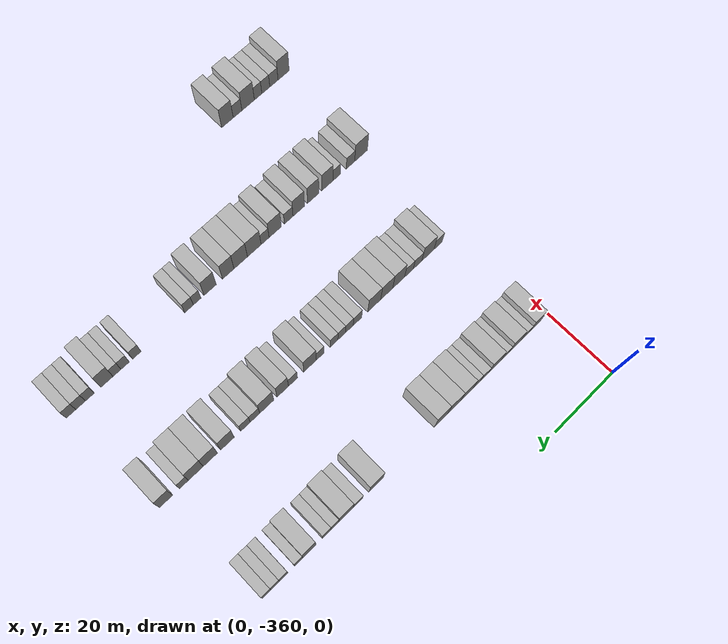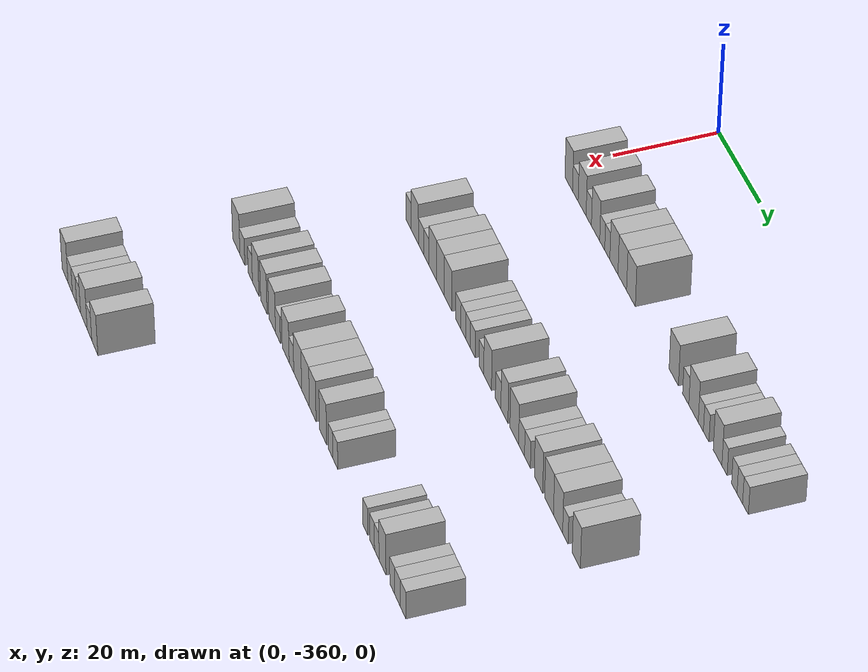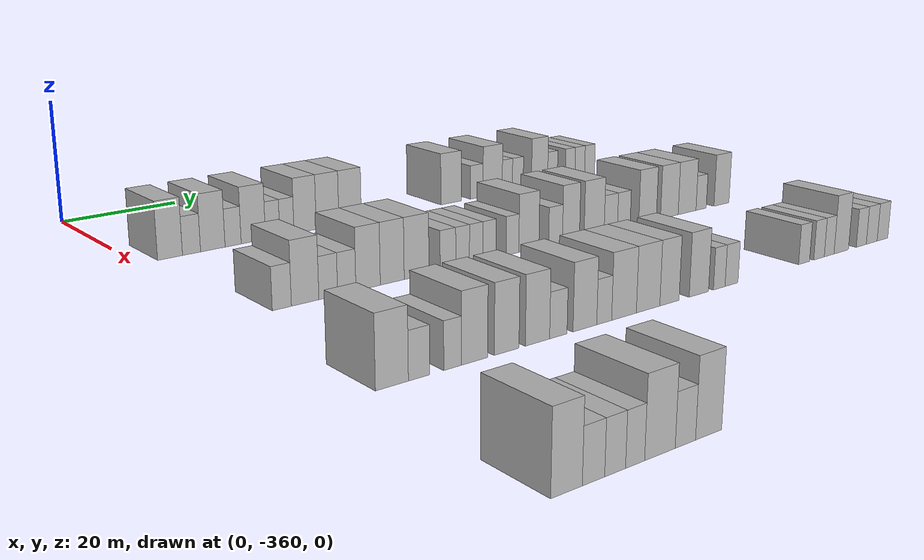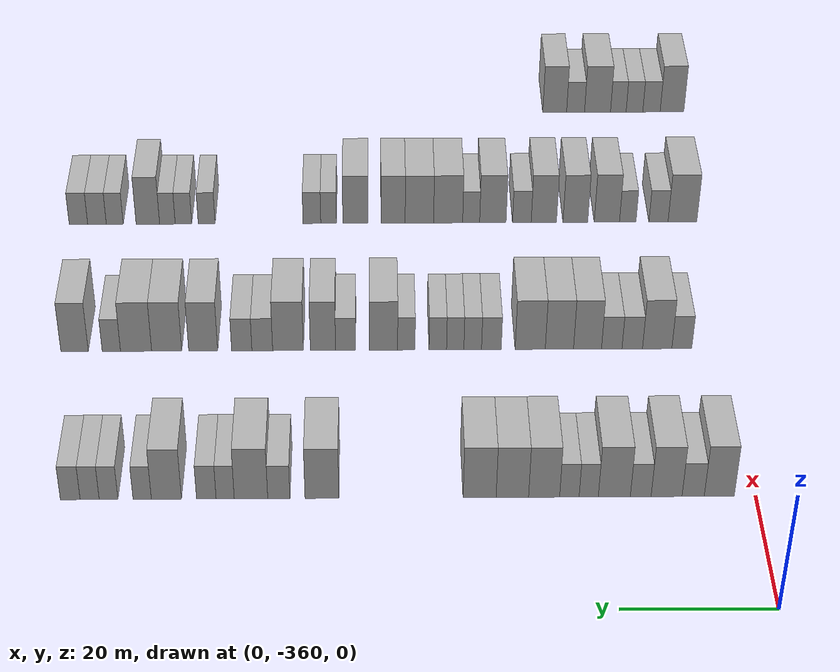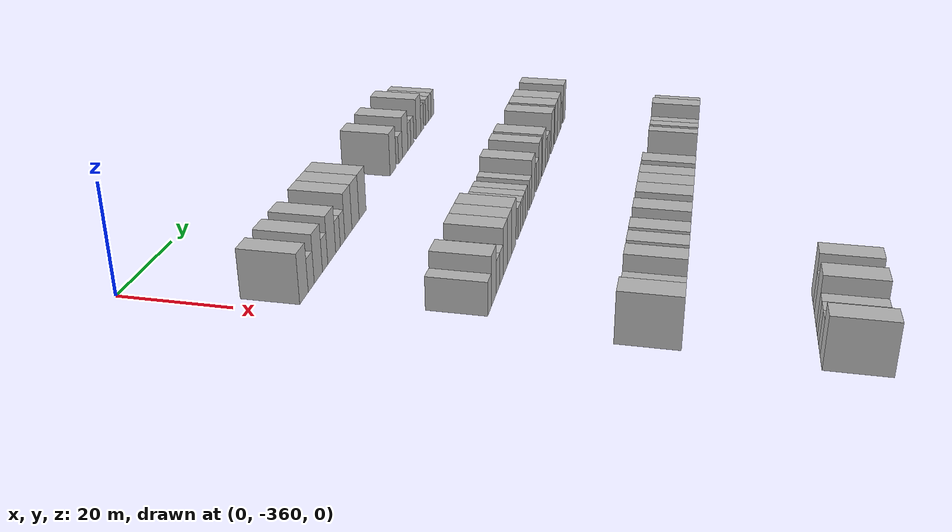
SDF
<sdf version="1.6">
 <world name="default">
  <model name="building_27">
   <static>1</static>
   <pose>25.0000 -355.0844 0 0.000000 0.000000 0.000000</pose>
   <link name="link">
    <pose>0 0 4.50 0 0 0</pose>
    <collision name="collision"><geometry><box><size>10.0000 3.9851 9.0000</size></box></geometry></collision>
    <visual name="visual">
     <cast_shadows>0</cast_shadows>
     <geometry><box><size>10.0000 3.9851 9.0000</size></box></geometry>
     <material>
      <script>
       <uri>model://HANNAS_wall/materials/scripts</uri>
       <uri>model://HANNAS_wall/materials/textures</uri>
       <name>vrc/HANNAS_wall</name>
      </script>
     </material>
    </visual>
   </link>
  </model>
  <model name="building_28">
   <static>1</static>
   <pose>25.0000 -351.6137 0 0.000000 0.000000 0.000000</pose>
   <link name="link">
    <pose>0 0 3.00 0 0 0</pose>
    <collision name="collision"><geometry><box><size>10.0000 2.9562 6.0000</size></box></geometry></collision>
    <visual name="visual">
     <cast_shadows>0</cast_shadows>
     <geometry><box><size>10.0000 2.9562 6.0000</size></box></geometry>
     <material>
      <script>
       <uri>model://HANNAS_wall/materials/scripts</uri>
       <uri>model://HANNAS_wall/materials/textures</uri>
       <name>vrc/HANNAS_wall</name>
      </script>
     </material>
    </visual>
   </link>
  </model>
  <model name="building_29">
   <static>1</static>
   <pose>25.0000 -348.0828 0 0.000000 0.000000 0.000000</pose>
   <link name="link">
    <pose>0 0 4.50 0 0 0</pose>
    <collision name="collision"><geometry><box><size>10.0000 4.1057 9.0000</size></box></geometry></collision>
    <visual name="visual">
     <cast_shadows>0</cast_shadows>
     <geometry><box><size>10.0000 4.1057 9.0000</size></box></geometry>
     <material>
      <script>
       <uri>model://HANNAS_wall/materials/scripts</uri>
       <uri>model://HANNAS_wall/materials/textures</uri>
       <name>vrc/HANNAS_wall</name>
      </script>
     </material>
    </visual>
   </link>
  </model>
  <model name="building_30">
   <static>1</static>
   <pose>25.0000 -344.6505 0 0.000000 0.000000 0.000000</pose>
   <link name="link">
    <pose>0 0 3.00 0 0 0</pose>
    <collision name="collision"><geometry><box><size>10.0000 2.7588 6.0000</size></box></geometry></collision>
    <visual name="visual">
     <cast_shadows>0</cast_shadows>
     <geometry><box><size>10.0000 2.7588 6.0000</size></box></geometry>
     <material>
      <script>
       <uri>model://HANNAS_wall/materials/scripts</uri>
       <uri>model://HANNAS_wall/materials/textures</uri>
       <name>vrc/HANNAS_wall</name>
      </script>
     </material>
    </visual>
   </link>
  </model>
  <model name="building_31">
   <static>1</static>
   <pose>25.0000 -341.1435 0 0.000000 0.000000 0.000000</pose>
   <link name="link">
    <pose>0 0 4.50 0 0 0</pose>
    <collision name="collision"><geometry><box><size>10.0000 4.2553 9.0000</size></box></geometry></collision>
    <visual name="visual">
     <cast_shadows>0</cast_shadows>
     <geometry><box><size>10.0000 4.2553 9.0000</size></box></geometry>
     <material>
      <script>
       <uri>model://HANNAS_wall/materials/scripts</uri>
       <uri>model://HANNAS_wall/materials/textures</uri>
       <name>vrc/HANNAS_wall</name>
      </script>
     </material>
    </visual>
   </link>
  </model>
  <model name="building_32">
   <static>1</static>
   <pose>25.0000 -337.7430 0 0.000000 0.000000 0.000000</pose>
   <link name="link">
    <pose>0 0 3.00 0 0 0</pose>
    <collision name="collision"><geometry><box><size>10.0000 2.5455 6.0000</size></box></geometry></collision>
    <visual name="visual">
     <cast_shadows>0</cast_shadows>
     <geometry><box><size>10.0000 2.5455 6.0000</size></box></geometry>
     <material>
      <script>
       <uri>model://HANNAS_wall/materials/scripts</uri>
       <uri>model://HANNAS_wall/materials/textures</uri>
       <name>vrc/HANNAS_wall</name>
      </script>
     </material>
    </visual>
   </link>
  </model>
  <model name="building_33">
   <static>1</static>
   <pose>25.0000 -335.1756 0 0.000000 0.000000 0.000000</pose>
   <link name="link">
    <pose>0 0 3.00 0 0 0</pose>
    <collision name="collision"><geometry><box><size>10.0000 2.5894 6.0000</size></box></geometry></collision>
    <visual name="visual">
     <cast_shadows>0</cast_shadows>
     <geometry><box><size>10.0000 2.5894 6.0000</size></box></geometry>
     <material>
      <script>
       <uri>model://HANNAS_wall/materials/scripts</uri>
       <uri>model://HANNAS_wall/materials/textures</uri>
       <name>vrc/HANNAS_wall</name>
      </script>
     </material>
    </visual>
   </link>
  </model>
  <model name="building_34">
   <static>1</static>
   <pose>25.0000 -331.8204 0 0.000000 0.000000 0.000000</pose>
   <link name="link">
    <pose>0 0 4.50 0 0 0</pose>
    <collision name="collision"><geometry><box><size>10.0000 4.1209 9.0000</size></box></geometry></collision>
    <visual name="visual">
     <cast_shadows>0</cast_shadows>
     <geometry><box><size>10.0000 4.1209 9.0000</size></box></geometry>
     <material>
      <script>
       <uri>model://HANNAS_wall/materials/scripts</uri>
       <uri>model://HANNAS_wall/materials/textures</uri>
       <name>vrc/HANNAS_wall</name>
      </script>
     </material>
    </visual>
   </link>
  </model>
  <model name="building_35">
   <static>1</static>
   <pose>25.0000 -327.6052 0 0.000000 0.000000 0.000000</pose>
   <link name="link">
    <pose>0 0 4.50 0 0 0</pose>
    <collision name="collision"><geometry><box><size>10.0000 4.3096 9.0000</size></box></geometry></collision>
    <visual name="visual">
     <cast_shadows>0</cast_shadows>
     <geometry><box><size>10.0000 4.3096 9.0000</size></box></geometry>
     <material>
      <script>
       <uri>model://HANNAS_wall/materials/scripts</uri>
       <uri>model://HANNAS_wall/materials/textures</uri>
       <name>vrc/HANNAS_wall</name>
      </script>
     </material>
    </visual>
   </link>
  </model>
  <model name="building_36">
   <static>1</static>
   <pose>25.0000 -323.2583 0 0.000000 0.000000 0.000000</pose>
   <link name="link">
    <pose>0 0 4.50 0 0 0</pose>
    <collision name="collision"><geometry><box><size>10.0000 4.3843 9.0000</size></box></geometry></collision>
    <visual name="visual">
     <cast_shadows>0</cast_shadows>
     <geometry><box><size>10.0000 4.3843 9.0000</size></box></geometry>
     <material>
      <script>
       <uri>model://HANNAS_wall/materials/scripts</uri>
       <uri>model://HANNAS_wall/materials/textures</uri>
       <name>vrc/HANNAS_wall</name>
      </script>
     </material>
    </visual>
   </link>
  </model>
  <model name="building_37">
   <static>1</static>
   <pose>25.0000 -302.3464 0 0.000000 0.000000 0.000000</pose>
   <link name="link">
    <pose>0 0 4.50 0 0 0</pose>
    <collision name="collision"><geometry><box><size>10.0000 4.4798 9.0000</size></box></geometry></collision>
    <visual name="visual">
     <cast_shadows>0</cast_shadows>
     <geometry><box><size>10.0000 4.4798 9.0000</size></box></geometry>
     <material>
      <script>
       <uri>model://HANNAS_wall/materials/scripts</uri>
       <uri>model://HANNAS_wall/materials/textures</uri>
       <name>vrc/HANNAS_wall</name>
      </script>
     </material>
    </visual>
   </link>
  </model>
  <model name="building_38">
   <static>1</static>
   <pose>25.0000 -296.6326 0 0.000000 0.000000 0.000000</pose>
   <link name="link">
    <pose>0 0 3.00 0 0 0</pose>
    <collision name="collision"><geometry><box><size>10.0000 2.9478 6.0000</size></box></geometry></collision>
    <visual name="visual">
     <cast_shadows>0</cast_shadows>
     <geometry><box><size>10.0000 2.9478 6.0000</size></box></geometry>
     <material>
      <script>
       <uri>model://HANNAS_wall/materials/scripts</uri>
       <uri>model://HANNAS_wall/materials/textures</uri>
       <name>vrc/HANNAS_wall</name>
      </script>
     </material>
    </visual>
   </link>
  </model>
  <model name="building_39">
   <static>1</static>
   <pose>25.0000 -292.9393 0 0.000000 0.000000 0.000000</pose>
   <link name="link">
    <pose>0 0 4.50 0 0 0</pose>
    <collision name="collision"><geometry><box><size>10.0000 4.4390 9.0000</size></box></geometry></collision>
    <visual name="visual">
     <cast_shadows>0</cast_shadows>
     <geometry><box><size>10.0000 4.4390 9.0000</size></box></geometry>
     <material>
      <script>
       <uri>model://HANNAS_wall/materials/scripts</uri>
       <uri>model://HANNAS_wall/materials/textures</uri>
       <name>vrc/HANNAS_wall</name>
      </script>
     </material>
    </visual>
   </link>
  </model>
  <model name="building_40">
   <static>1</static>
   <pose>25.0000 -289.5185 0 0.000000 0.000000 0.000000</pose>
   <link name="link">
    <pose>0 0 3.00 0 0 0</pose>
    <collision name="collision"><geometry><box><size>10.0000 2.4026 6.0000</size></box></geometry></collision>
    <visual name="visual">
     <cast_shadows>0</cast_shadows>
     <geometry><box><size>10.0000 2.4026 6.0000</size></box></geometry>
     <material>
      <script>
       <uri>model://HANNAS_wall/materials/scripts</uri>
       <uri>model://HANNAS_wall/materials/textures</uri>
       <name>vrc/HANNAS_wall</name>
      </script>
     </material>
    </visual>
   </link>
  </model>
  <model name="building_41">
   <static>1</static>
   <pose>25.0000 -287.0222 0 0.000000 0.000000 0.000000</pose>
   <link name="link">
    <pose>0 0 3.00 0 0 0</pose>
    <collision name="collision"><geometry><box><size>10.0000 2.5901 6.0000</size></box></geometry></collision>
    <visual name="visual">
     <cast_shadows>0</cast_shadows>
     <geometry><box><size>10.0000 2.5901 6.0000</size></box></geometry>
     <material>
      <script>
       <uri>model://HANNAS_wall/materials/scripts</uri>
       <uri>model://HANNAS_wall/materials/textures</uri>
       <name>vrc/HANNAS_wall</name>
      </script>
     </material>
    </visual>
   </link>
  </model>
  <model name="building_42">
   <static>1</static>
   <pose>25.0000 -281.7307 0 0.000000 0.000000 0.000000</pose>
   <link name="link">
    <pose>0 0 4.50 0 0 0</pose>
    <collision name="collision"><geometry><box><size>10.0000 3.9928 9.0000</size></box></geometry></collision>
    <visual name="visual">
     <cast_shadows>0</cast_shadows>
     <geometry><box><size>10.0000 3.9928 9.0000</size></box></geometry>
     <material>
      <script>
       <uri>model://HANNAS_wall/materials/scripts</uri>
       <uri>model://HANNAS_wall/materials/textures</uri>
       <name>vrc/HANNAS_wall</name>
      </script>
     </material>
    </visual>
   </link>
  </model>
  <model name="building_43">
   <static>1</static>
   <pose>25.0000 -278.5234 0 0.000000 0.000000 0.000000</pose>
   <link name="link">
    <pose>0 0 3.00 0 0 0</pose>
    <collision name="collision"><geometry><box><size>10.0000 2.4219 6.0000</size></box></geometry></collision>
    <visual name="visual">
     <cast_shadows>0</cast_shadows>
     <geometry><box><size>10.0000 2.4219 6.0000</size></box></geometry>
     <material>
      <script>
       <uri>model://HANNAS_wall/materials/scripts</uri>
       <uri>model://HANNAS_wall/materials/textures</uri>
       <name>vrc/HANNAS_wall</name>
      </script>
     </material>
    </visual>
   </link>
  </model>
  <model name="building_44">
   <static>1</static>
   <pose>25.0000 -274.0688 0 0.000000 0.000000 0.000000</pose>
   <link name="link">
    <pose>0 0 3.00 0 0 0</pose>
    <collision name="collision"><geometry><box><size>10.0000 2.4872 6.0000</size></box></geometry></collision>
    <visual name="visual">
     <cast_shadows>0</cast_shadows>
     <geometry><box><size>10.0000 2.4872 6.0000</size></box></geometry>
     <material>
      <script>
       <uri>model://HANNAS_wall/materials/scripts</uri>
       <uri>model://HANNAS_wall/materials/textures</uri>
       <name>vrc/HANNAS_wall</name>
      </script>
     </material>
    </visual>
   </link>
  </model>
  <model name="building_45">
   <static>1</static>
   <pose>25.0000 -271.5663 0 0.000000 0.000000 0.000000</pose>
   <link name="link">
    <pose>0 0 3.00 0 0 0</pose>
    <collision name="collision"><geometry><box><size>10.0000 2.5177 6.0000</size></box></geometry></collision>
    <visual name="visual">
     <cast_shadows>0</cast_shadows>
     <geometry><box><size>10.0000 2.5177 6.0000</size></box></geometry>
     <material>
      <script>
       <uri>model://HANNAS_wall/materials/scripts</uri>
       <uri>model://HANNAS_wall/materials/textures</uri>
       <name>vrc/HANNAS_wall</name>
      </script>
     </material>
    </visual>
   </link>
  </model>
  <model name="building_46">
   <static>1</static>
   <pose>25.0000 -268.9976 0 0.000000 0.000000 0.000000</pose>
   <link name="link">
    <pose>0 0 3.00 0 0 0</pose>
    <collision name="collision"><geometry><box><size>10.0000 2.6197 6.0000</size></box></geometry></collision>
    <visual name="visual">
     <cast_shadows>0</cast_shadows>
     <geometry><box><size>10.0000 2.6197 6.0000</size></box></geometry>
     <material>
      <script>
       <uri>model://HANNAS_wall/materials/scripts</uri>
       <uri>model://HANNAS_wall/materials/textures</uri>
       <name>vrc/HANNAS_wall</name>
      </script>
     </material>
    </visual>
   </link>
  </model>
  <model name="building_235">
   <static>1</static>
   <pose>55.0000 -353.5760 0 0.000000 0.000000 0.000000</pose>
   <link name="link">
    <pose>0 0 3.00 0 0 0</pose>
    <collision name="collision"><geometry><box><size>10.0000 2.8679 6.0000</size></box></geometry></collision>
    <visual name="visual">
     <cast_shadows>0</cast_shadows>
     <geometry><box><size>10.0000 2.8679 6.0000</size></box></geometry>
     <material>
      <script>
       <uri>model://HANNAS_wall/materials/scripts</uri>
       <uri>model://HANNAS_wall/materials/textures</uri>
       <name>vrc/HANNAS_wall</name>
      </script>
     </material>
    </visual>
   </link>
  </model>
  <model name="building_236">
   <static>1</static>
   <pose>55.0000 -350.0308 0 0.000000 0.000000 0.000000</pose>
   <link name="link">
    <pose>0 0 4.50 0 0 0</pose>
    <collision name="collision"><geometry><box><size>10.0000 4.2224 9.0000</size></box></geometry></collision>
    <visual name="visual">
     <cast_shadows>0</cast_shadows>
     <geometry><box><size>10.0000 4.2224 9.0000</size></box></geometry>
     <material>
      <script>
       <uri>model://HANNAS_wall/materials/scripts</uri>
       <uri>model://HANNAS_wall/materials/textures</uri>
       <name>vrc/HANNAS_wall</name>
      </script>
     </material>
    </visual>
   </link>
  </model>
  <model name="building_237">
   <static>1</static>
   <pose>55.0000 -346.4461 0 0.000000 0.000000 0.000000</pose>
   <link name="link">
    <pose>0 0 3.00 0 0 0</pose>
    <collision name="collision"><geometry><box><size>10.0000 2.9470 6.0000</size></box></geometry></collision>
    <visual name="visual">
     <cast_shadows>0</cast_shadows>
     <geometry><box><size>10.0000 2.9470 6.0000</size></box></geometry>
     <material>
      <script>
       <uri>model://HANNAS_wall/materials/scripts</uri>
       <uri>model://HANNAS_wall/materials/textures</uri>
       <name>vrc/HANNAS_wall</name>
      </script>
     </material>
    </visual>
   </link>
  </model>
  <model name="building_238">
   <static>1</static>
   <pose>55.0000 -343.5008 0 0.000000 0.000000 0.000000</pose>
   <link name="link">
    <pose>0 0 3.00 0 0 0</pose>
    <collision name="collision"><geometry><box><size>10.0000 2.9435 6.0000</size></box></geometry></collision>
    <visual name="visual">
     <cast_shadows>0</cast_shadows>
     <geometry><box><size>10.0000 2.9435 6.0000</size></box></geometry>
     <material>
      <script>
       <uri>model://HANNAS_wall/materials/scripts</uri>
       <uri>model://HANNAS_wall/materials/textures</uri>
       <name>vrc/HANNAS_wall</name>
      </script>
     </material>
    </visual>
   </link>
  </model>
  <model name="building_239">
   <static>1</static>
   <pose>55.0000 -340.0143 0 0.000000 0.000000 0.000000</pose>
   <link name="link">
    <pose>0 0 4.50 0 0 0</pose>
    <collision name="collision"><geometry><box><size>10.0000 4.0295 9.0000</size></box></geometry></collision>
    <visual name="visual">
     <cast_shadows>0</cast_shadows>
     <geometry><box><size>10.0000 4.0295 9.0000</size></box></geometry>
     <material>
      <script>
       <uri>model://HANNAS_wall/materials/scripts</uri>
       <uri>model://HANNAS_wall/materials/textures</uri>
       <name>vrc/HANNAS_wall</name>
      </script>
     </material>
    </visual>
   </link>
  </model>
  <model name="building_240">
   <static>1</static>
   <pose>55.0000 -335.9686 0 0.000000 0.000000 0.000000</pose>
   <link name="link">
    <pose>0 0 4.50 0 0 0</pose>
    <collision name="collision"><geometry><box><size>10.0000 4.0621 9.0000</size></box></geometry></collision>
    <visual name="visual">
     <cast_shadows>0</cast_shadows>
     <geometry><box><size>10.0000 4.0621 9.0000</size></box></geometry>
     <material>
      <script>
       <uri>model://HANNAS_wall/materials/scripts</uri>
       <uri>model://HANNAS_wall/materials/textures</uri>
       <name>vrc/HANNAS_wall</name>
      </script>
     </material>
    </visual>
   </link>
  </model>
  <model name="building_241">
   <static>1</static>
   <pose>55.0000 -331.7714 0 0.000000 0.000000 0.000000</pose>
   <link name="link">
    <pose>0 0 4.50 0 0 0</pose>
    <collision name="collision"><geometry><box><size>10.0000 4.3322 9.0000</size></box></geometry></collision>
    <visual name="visual">
     <cast_shadows>0</cast_shadows>
     <geometry><box><size>10.0000 4.3322 9.0000</size></box></geometry>
     <material>
      <script>
       <uri>model://HANNAS_wall/materials/scripts</uri>
       <uri>model://HANNAS_wall/materials/textures</uri>
       <name>vrc/HANNAS_wall</name>
      </script>
     </material>
    </visual>
   </link>
  </model>
  <model name="building_242">
   <static>1</static>
   <pose>55.0000 -326.1899 0 0.000000 0.000000 0.000000</pose>
   <link name="link">
    <pose>0 0 3.00 0 0 0</pose>
    <collision name="collision"><geometry><box><size>10.0000 2.8308 6.0000</size></box></geometry></collision>
    <visual name="visual">
     <cast_shadows>0</cast_shadows>
     <geometry><box><size>10.0000 2.8308 6.0000</size></box></geometry>
     <material>
      <script>
       <uri>model://HANNAS_wall/materials/scripts</uri>
       <uri>model://HANNAS_wall/materials/textures</uri>
       <name>vrc/HANNAS_wall</name>
      </script>
     </material>
    </visual>
   </link>
  </model>
  <model name="building_243">
   <static>1</static>
   <pose>55.0000 -323.5064 0 0.000000 0.000000 0.000000</pose>
   <link name="link">
    <pose>0 0 3.00 0 0 0</pose>
    <collision name="collision"><geometry><box><size>10.0000 2.5363 6.0000</size></box></geometry></collision>
    <visual name="visual">
     <cast_shadows>0</cast_shadows>
     <geometry><box><size>10.0000 2.5363 6.0000</size></box></geometry>
     <material>
      <script>
       <uri>model://HANNAS_wall/materials/scripts</uri>
       <uri>model://HANNAS_wall/materials/textures</uri>
       <name>vrc/HANNAS_wall</name>
      </script>
     </material>
    </visual>
   </link>
  </model>
  <model name="building_244">
   <static>1</static>
   <pose>55.0000 -320.9947 0 0.000000 0.000000 0.000000</pose>
   <link name="link">
    <pose>0 0 3.00 0 0 0</pose>
    <collision name="collision"><geometry><box><size>10.0000 2.4869 6.0000</size></box></geometry></collision>
    <visual name="visual">
     <cast_shadows>0</cast_shadows>
     <geometry><box><size>10.0000 2.4869 6.0000</size></box></geometry>
     <material>
      <script>
       <uri>model://HANNAS_wall/materials/scripts</uri>
       <uri>model://HANNAS_wall/materials/textures</uri>
       <name>vrc/HANNAS_wall</name>
      </script>
     </material>
    </visual>
   </link>
  </model>
  <model name="building_245">
   <static>1</static>
   <pose>55.0000 -318.4883 0 0.000000 0.000000 0.000000</pose>
   <link name="link">
    <pose>0 0 3.00 0 0 0</pose>
    <collision name="collision"><geometry><box><size>10.0000 2.5260 6.0000</size></box></geometry></collision>
    <visual name="visual">
     <cast_shadows>0</cast_shadows>
     <geometry><box><size>10.0000 2.5260 6.0000</size></box></geometry>
     <material>
      <script>
       <uri>model://HANNAS_wall/materials/scripts</uri>
       <uri>model://HANNAS_wall/materials/textures</uri>
       <name>vrc/HANNAS_wall</name>
      </script>
     </material>
    </visual>
   </link>
  </model>
  <model name="building_246">
   <static>1</static>
   <pose>55.0000 -313.9743 0 0.000000 0.000000 0.000000</pose>
   <link name="link">
    <pose>0 0 3.00 0 0 0</pose>
    <collision name="collision"><geometry><box><size>10.0000 2.5020 6.0000</size></box></geometry></collision>
    <visual name="visual">
     <cast_shadows>0</cast_shadows>
     <geometry><box><size>10.0000 2.5020 6.0000</size></box></geometry>
     <material>
      <script>
       <uri>model://HANNAS_wall/materials/scripts</uri>
       <uri>model://HANNAS_wall/materials/textures</uri>
       <name>vrc/HANNAS_wall</name>
      </script>
     </material>
    </visual>
   </link>
  </model>
  <model name="building_247">
   <static>1</static>
   <pose>55.0000 -310.7030 0 0.000000 0.000000 0.000000</pose>
   <link name="link">
    <pose>0 0 4.50 0 0 0</pose>
    <collision name="collision"><geometry><box><size>10.0000 4.0408 9.0000</size></box></geometry></collision>
    <visual name="visual">
     <cast_shadows>0</cast_shadows>
     <geometry><box><size>10.0000 4.0408 9.0000</size></box></geometry>
     <material>
      <script>
       <uri>model://HANNAS_wall/materials/scripts</uri>
       <uri>model://HANNAS_wall/materials/textures</uri>
       <name>vrc/HANNAS_wall</name>
      </script>
     </material>
    </visual>
   </link>
  </model>
  <model name="building_248">
   <static>1</static>
   <pose>55.0000 -305.2465 0 0.000000 0.000000 0.000000</pose>
   <link name="link">
    <pose>0 0 3.00 0 0 0</pose>
    <collision name="collision"><geometry><box><size>10.0000 2.8721 6.0000</size></box></geometry></collision>
    <visual name="visual">
     <cast_shadows>0</cast_shadows>
     <geometry><box><size>10.0000 2.8721 6.0000</size></box></geometry>
     <material>
      <script>
       <uri>model://HANNAS_wall/materials/scripts</uri>
       <uri>model://HANNAS_wall/materials/textures</uri>
       <name>vrc/HANNAS_wall</name>
      </script>
     </material>
    </visual>
   </link>
  </model>
  <model name="building_249">
   <static>1</static>
   <pose>55.0000 -301.9984 0 0.000000 0.000000 0.000000</pose>
   <link name="link">
    <pose>0 0 4.50 0 0 0</pose>
    <collision name="collision"><geometry><box><size>10.0000 3.6240 9.0000</size></box></geometry></collision>
    <visual name="visual">
     <cast_shadows>0</cast_shadows>
     <geometry><box><size>10.0000 3.6240 9.0000</size></box></geometry>
     <material>
      <script>
       <uri>model://HANNAS_wall/materials/scripts</uri>
       <uri>model://HANNAS_wall/materials/textures</uri>
       <name>vrc/HANNAS_wall</name>
      </script>
     </material>
    </visual>
   </link>
  </model>
  <model name="building_250">
   <static>1</static>
   <pose>55.0000 -296.9816 0 0.000000 0.000000 0.000000</pose>
   <link name="link">
    <pose>0 0 4.50 0 0 0</pose>
    <collision name="collision"><geometry><box><size>10.0000 4.4096 9.0000</size></box></geometry></collision>
    <visual name="visual">
     <cast_shadows>0</cast_shadows>
     <geometry><box><size>10.0000 4.4096 9.0000</size></box></geometry>
     <material>
      <script>
       <uri>model://HANNAS_wall/materials/scripts</uri>
       <uri>model://HANNAS_wall/materials/textures</uri>
       <name>vrc/HANNAS_wall</name>
      </script>
     </material>
    </visual>
   </link>
  </model>
  <model name="building_251">
   <static>1</static>
   <pose>55.0000 -293.2873 0 0.000000 0.000000 0.000000</pose>
   <link name="link">
    <pose>0 0 3.00 0 0 0</pose>
    <collision name="collision"><geometry><box><size>10.0000 2.9792 6.0000</size></box></geometry></collision>
    <visual name="visual">
     <cast_shadows>0</cast_shadows>
     <geometry><box><size>10.0000 2.9792 6.0000</size></box></geometry>
     <material>
      <script>
       <uri>model://HANNAS_wall/materials/scripts</uri>
       <uri>model://HANNAS_wall/materials/textures</uri>
       <name>vrc/HANNAS_wall</name>
      </script>
     </material>
    </visual>
   </link>
  </model>
  <model name="building_252">
   <static>1</static>
   <pose>55.0000 -290.3414 0 0.000000 0.000000 0.000000</pose>
   <link name="link">
    <pose>0 0 3.00 0 0 0</pose>
    <collision name="collision"><geometry><box><size>10.0000 2.9125 6.0000</size></box></geometry></collision>
    <visual name="visual">
     <cast_shadows>0</cast_shadows>
     <geometry><box><size>10.0000 2.9125 6.0000</size></box></geometry>
     <material>
      <script>
       <uri>model://HANNAS_wall/materials/scripts</uri>
       <uri>model://HANNAS_wall/materials/textures</uri>
       <name>vrc/HANNAS_wall</name>
      </script>
     </material>
    </visual>
   </link>
  </model>
  <model name="building_253">
   <static>1</static>
   <pose>55.0000 -284.8066 0 0.000000 0.000000 0.000000</pose>
   <link name="link">
    <pose>0 0 4.50 0 0 0</pose>
    <collision name="collision"><geometry><box><size>10.0000 4.1572 9.0000</size></box></geometry></collision>
    <visual name="visual">
     <cast_shadows>0</cast_shadows>
     <geometry><box><size>10.0000 4.1572 9.0000</size></box></geometry>
     <material>
      <script>
       <uri>model://HANNAS_wall/materials/scripts</uri>
       <uri>model://HANNAS_wall/materials/textures</uri>
       <name>vrc/HANNAS_wall</name>
      </script>
     </material>
    </visual>
   </link>
  </model>
  <model name="building_254">
   <static>1</static>
   <pose>55.0000 -279.5702 0 0.000000 0.000000 0.000000</pose>
   <link name="link">
    <pose>0 0 4.50 0 0 0</pose>
    <collision name="collision"><geometry><box><size>10.0000 4.3155 9.0000</size></box></geometry></collision>
    <visual name="visual">
     <cast_shadows>0</cast_shadows>
     <geometry><box><size>10.0000 4.3155 9.0000</size></box></geometry>
     <material>
      <script>
       <uri>model://HANNAS_wall/materials/scripts</uri>
       <uri>model://HANNAS_wall/materials/textures</uri>
       <name>vrc/HANNAS_wall</name>
      </script>
     </material>
    </visual>
   </link>
  </model>
  <model name="building_255">
   <static>1</static>
   <pose>55.0000 -275.1767 0 0.000000 0.000000 0.000000</pose>
   <link name="link">
    <pose>0 0 4.50 0 0 0</pose>
    <collision name="collision"><geometry><box><size>10.0000 4.4716 9.0000</size></box></geometry></collision>
    <visual name="visual">
     <cast_shadows>0</cast_shadows>
     <geometry><box><size>10.0000 4.4716 9.0000</size></box></geometry>
     <material>
      <script>
       <uri>model://HANNAS_wall/materials/scripts</uri>
       <uri>model://HANNAS_wall/materials/textures</uri>
       <name>vrc/HANNAS_wall</name>
      </script>
     </material>
    </visual>
   </link>
  </model>
  <model name="building_256">
   <static>1</static>
   <pose>55.0000 -271.6312 0 0.000000 0.000000 0.000000</pose>
   <link name="link">
    <pose>0 0 3.00 0 0 0</pose>
    <collision name="collision"><geometry><box><size>10.0000 2.6195 6.0000</size></box></geometry></collision>
    <visual name="visual">
     <cast_shadows>0</cast_shadows>
     <geometry><box><size>10.0000 2.6195 6.0000</size></box></geometry>
     <material>
      <script>
       <uri>model://HANNAS_wall/materials/scripts</uri>
       <uri>model://HANNAS_wall/materials/textures</uri>
       <name>vrc/HANNAS_wall</name>
      </script>
     </material>
    </visual>
   </link>
  </model>
  <model name="building_257">
   <static>1</static>
   <pose>55.0000 -266.3560 0 0.000000 0.000000 0.000000</pose>
   <link name="link">
    <pose>0 0 4.50 0 0 0</pose>
    <collision name="collision"><geometry><box><size>10.0000 3.9309 9.0000</size></box></geometry></collision>
    <visual name="visual">
     <cast_shadows>0</cast_shadows>
     <geometry><box><size>10.0000 3.9309 9.0000</size></box></geometry>
     <material>
      <script>
       <uri>model://HANNAS_wall/materials/scripts</uri>
       <uri>model://HANNAS_wall/materials/textures</uri>
       <name>vrc/HANNAS_wall</name>
      </script>
     </material>
    </visual>
   </link>
  </model>
  <model name="building_458">
   <static>1</static>
   <pose>85.0000 -357.1413 0 0.000000 0.000000 0.000000</pose>
   <link name="link">
    <pose>0 0 4.50 0 0 0</pose>
    <collision name="collision"><geometry><box><size>10.0000 4.4480 9.0000</size></box></geometry></collision>
    <visual name="visual">
     <cast_shadows>0</cast_shadows>
     <geometry><box><size>10.0000 4.4480 9.0000</size></box></geometry>
     <material>
      <script>
       <uri>model://HANNAS_wall/materials/scripts</uri>
       <uri>model://HANNAS_wall/materials/textures</uri>
       <name>vrc/HANNAS_wall</name>
      </script>
     </material>
    </visual>
   </link>
  </model>
  <model name="building_459">
   <static>1</static>
   <pose>85.0000 -353.4342 0 0.000000 0.000000 0.000000</pose>
   <link name="link">
    <pose>0 0 3.00 0 0 0</pose>
    <collision name="collision"><geometry><box><size>10.0000 2.9662 6.0000</size></box></geometry></collision>
    <visual name="visual">
     <cast_shadows>0</cast_shadows>
     <geometry><box><size>10.0000 2.9662 6.0000</size></box></geometry>
     <material>
      <script>
       <uri>model://HANNAS_wall/materials/scripts</uri>
       <uri>model://HANNAS_wall/materials/textures</uri>
       <name>vrc/HANNAS_wall</name>
      </script>
     </material>
    </visual>
   </link>
  </model>
  <model name="building_460">
   <static>1</static>
   <pose>85.0000 -348.6703 0 0.000000 0.000000 0.000000</pose>
   <link name="link">
    <pose>0 0 3.00 0 0 0</pose>
    <collision name="collision"><geometry><box><size>10.0000 2.5615 6.0000</size></box></geometry></collision>
    <visual name="visual">
     <cast_shadows>0</cast_shadows>
     <geometry><box><size>10.0000 2.5615 6.0000</size></box></geometry>
     <material>
      <script>
       <uri>model://HANNAS_wall/materials/scripts</uri>
       <uri>model://HANNAS_wall/materials/textures</uri>
       <name>vrc/HANNAS_wall</name>
      </script>
     </material>
    </visual>
   </link>
  </model>
  <model name="building_461">
   <static>1</static>
   <pose>85.0000 -345.4332 0 0.000000 0.000000 0.000000</pose>
   <link name="link">
    <pose>0 0 4.50 0 0 0</pose>
    <collision name="collision"><geometry><box><size>10.0000 3.9126 9.0000</size></box></geometry></collision>
    <visual name="visual">
     <cast_shadows>0</cast_shadows>
     <geometry><box><size>10.0000 3.9126 9.0000</size></box></geometry>
     <material>
      <script>
       <uri>model://HANNAS_wall/materials/scripts</uri>
       <uri>model://HANNAS_wall/materials/textures</uri>
       <name>vrc/HANNAS_wall</name>
      </script>
     </material>
    </visual>
   </link>
  </model>
  <model name="building_462">
   <static>1</static>
   <pose>85.0000 -340.5588 0 0.000000 0.000000 0.000000</pose>
   <link name="link">
    <pose>0 0 4.50 0 0 0</pose>
    <collision name="collision"><geometry><box><size>10.0000 3.8362 9.0000</size></box></geometry></collision>
    <visual name="visual">
     <cast_shadows>0</cast_shadows>
     <geometry><box><size>10.0000 3.8362 9.0000</size></box></geometry>
     <material>
      <script>
       <uri>model://HANNAS_wall/materials/scripts</uri>
       <uri>model://HANNAS_wall/materials/textures</uri>
       <name>vrc/HANNAS_wall</name>
      </script>
     </material>
    </visual>
   </link>
  </model>
  <model name="building_463">
   <static>1</static>
   <pose>85.0000 -335.6803 0 0.000000 0.000000 0.000000</pose>
   <link name="link">
    <pose>0 0 4.50 0 0 0</pose>
    <collision name="collision"><geometry><box><size>10.0000 3.9208 9.0000</size></box></geometry></collision>
    <visual name="visual">
     <cast_shadows>0</cast_shadows>
     <geometry><box><size>10.0000 3.9208 9.0000</size></box></geometry>
     <material>
      <script>
       <uri>model://HANNAS_wall/materials/scripts</uri>
       <uri>model://HANNAS_wall/materials/textures</uri>
       <name>vrc/HANNAS_wall</name>
      </script>
     </material>
    </visual>
   </link>
  </model>
  <model name="building_464">
   <static>1</static>
   <pose>85.0000 -332.2759 0 0.000000 0.000000 0.000000</pose>
   <link name="link">
    <pose>0 0 3.00 0 0 0</pose>
    <collision name="collision"><geometry><box><size>10.0000 2.8881 6.0000</size></box></geometry></collision>
    <visual name="visual">
     <cast_shadows>0</cast_shadows>
     <geometry><box><size>10.0000 2.8881 6.0000</size></box></geometry>
     <material>
      <script>
       <uri>model://HANNAS_wall/materials/scripts</uri>
       <uri>model://HANNAS_wall/materials/textures</uri>
       <name>vrc/HANNAS_wall</name>
      </script>
     </material>
    </visual>
   </link>
  </model>
  <model name="building_465">
   <static>1</static>
   <pose>85.0000 -327.7877 0 0.000000 0.000000 0.000000</pose>
   <link name="link">
    <pose>0 0 4.50 0 0 0</pose>
    <collision name="collision"><geometry><box><size>10.0000 4.0883 9.0000</size></box></geometry></collision>
    <visual name="visual">
     <cast_shadows>0</cast_shadows>
     <geometry><box><size>10.0000 4.0883 9.0000</size></box></geometry>
     <material>
      <script>
       <uri>model://HANNAS_wall/materials/scripts</uri>
       <uri>model://HANNAS_wall/materials/textures</uri>
       <name>vrc/HANNAS_wall</name>
      </script>
     </material>
    </visual>
   </link>
  </model>
  <model name="building_466">
   <static>1</static>
   <pose>85.0000 -324.4291 0 0.000000 0.000000 0.000000</pose>
   <link name="link">
    <pose>0 0 3.00 0 0 0</pose>
    <collision name="collision"><geometry><box><size>10.0000 2.6289 6.0000</size></box></geometry></collision>
    <visual name="visual">
     <cast_shadows>0</cast_shadows>
     <geometry><box><size>10.0000 2.6289 6.0000</size></box></geometry>
     <material>
      <script>
       <uri>model://HANNAS_wall/materials/scripts</uri>
       <uri>model://HANNAS_wall/materials/textures</uri>
       <name>vrc/HANNAS_wall</name>
      </script>
     </material>
    </visual>
   </link>
  </model>
  <model name="building_467">
   <static>1</static>
   <pose>85.0000 -320.8695 0 0.000000 0.000000 0.000000</pose>
   <link name="link">
    <pose>0 0 4.50 0 0 0</pose>
    <collision name="collision"><geometry><box><size>10.0000 4.4903 9.0000</size></box></geometry></collision>
    <visual name="visual">
     <cast_shadows>0</cast_shadows>
     <geometry><box><size>10.0000 4.4903 9.0000</size></box></geometry>
     <material>
      <script>
       <uri>model://HANNAS_wall/materials/scripts</uri>
       <uri>model://HANNAS_wall/materials/textures</uri>
       <name>vrc/HANNAS_wall</name>
      </script>
     </material>
    </visual>
   </link>
  </model>
  <model name="building_468">
   <static>1</static>
   <pose>85.0000 -316.4229 0 0.000000 0.000000 0.000000</pose>
   <link name="link">
    <pose>0 0 4.50 0 0 0</pose>
    <collision name="collision"><geometry><box><size>10.0000 4.4029 9.0000</size></box></geometry></collision>
    <visual name="visual">
     <cast_shadows>0</cast_shadows>
     <geometry><box><size>10.0000 4.4029 9.0000</size></box></geometry>
     <material>
      <script>
       <uri>model://HANNAS_wall/materials/scripts</uri>
       <uri>model://HANNAS_wall/materials/textures</uri>
       <name>vrc/HANNAS_wall</name>
      </script>
     </material>
    </visual>
   </link>
  </model>
  <model name="building_469">
   <static>1</static>
   <pose>85.0000 -312.3579 0 0.000000 0.000000 0.000000</pose>
   <link name="link">
    <pose>0 0 4.50 0 0 0</pose>
    <collision name="collision"><geometry><box><size>10.0000 3.7271 9.0000</size></box></geometry></collision>
    <visual name="visual">
     <cast_shadows>0</cast_shadows>
     <geometry><box><size>10.0000 3.7271 9.0000</size></box></geometry>
     <material>
      <script>
       <uri>model://HANNAS_wall/materials/scripts</uri>
       <uri>model://HANNAS_wall/materials/textures</uri>
       <name>vrc/HANNAS_wall</name>
      </script>
     </material>
    </visual>
   </link>
  </model>
  <model name="building_470">
   <static>1</static>
   <pose>85.0000 -306.5451 0 0.000000 0.000000 0.000000</pose>
   <link name="link">
    <pose>0 0 4.50 0 0 0</pose>
    <collision name="collision"><geometry><box><size>10.0000 3.8985 9.0000</size></box></geometry></collision>
    <visual name="visual">
     <cast_shadows>0</cast_shadows>
     <geometry><box><size>10.0000 3.8985 9.0000</size></box></geometry>
     <material>
      <script>
       <uri>model://HANNAS_wall/materials/scripts</uri>
       <uri>model://HANNAS_wall/materials/textures</uri>
       <name>vrc/HANNAS_wall</name>
      </script>
     </material>
    </visual>
   </link>
  </model>
  <model name="building_471">
   <static>1</static>
   <pose>85.0000 -302.3850 0 0.000000 0.000000 0.000000</pose>
   <link name="link">
    <pose>0 0 3.00 0 0 0</pose>
    <collision name="collision"><geometry><box><size>10.0000 2.4216 6.0000</size></box></geometry></collision>
    <visual name="visual">
     <cast_shadows>0</cast_shadows>
     <geometry><box><size>10.0000 2.4216 6.0000</size></box></geometry>
     <material>
      <script>
       <uri>model://HANNAS_wall/materials/scripts</uri>
       <uri>model://HANNAS_wall/materials/textures</uri>
       <name>vrc/HANNAS_wall</name>
      </script>
     </material>
    </visual>
   </link>
  </model>
  <model name="building_472">
   <static>1</static>
   <pose>85.0000 -299.8096 0 0.000000 0.000000 0.000000</pose>
   <link name="link">
    <pose>0 0 3.00 0 0 0</pose>
    <collision name="collision"><geometry><box><size>10.0000 2.7292 6.0000</size></box></geometry></collision>
    <visual name="visual">
     <cast_shadows>0</cast_shadows>
     <geometry><box><size>10.0000 2.7292 6.0000</size></box></geometry>
     <material>
      <script>
       <uri>model://HANNAS_wall/materials/scripts</uri>
       <uri>model://HANNAS_wall/materials/textures</uri>
       <name>vrc/HANNAS_wall</name>
      </script>
     </material>
    </visual>
   </link>
  </model>
  <model name="building_473">
   <static>1</static>
   <pose>85.0000 -283.5396 0 0.000000 0.000000 0.000000</pose>
   <link name="link">
    <pose>0 0 3.00 0 0 0</pose>
    <collision name="collision"><geometry><box><size>10.0000 2.6036 6.0000</size></box></geometry></collision>
    <visual name="visual">
     <cast_shadows>0</cast_shadows>
     <geometry><box><size>10.0000 2.6036 6.0000</size></box></geometry>
     <material>
      <script>
       <uri>model://HANNAS_wall/materials/scripts</uri>
       <uri>model://HANNAS_wall/materials/textures</uri>
       <name>vrc/HANNAS_wall</name>
      </script>
     </material>
    </visual>
   </link>
  </model>
  <model name="building_474">
   <static>1</static>
   <pose>85.0000 -279.9591 0 0.000000 0.000000 0.000000</pose>
   <link name="link">
    <pose>0 0 3.00 0 0 0</pose>
    <collision name="collision"><geometry><box><size>10.0000 2.5573 6.0000</size></box></geometry></collision>
    <visual name="visual">
     <cast_shadows>0</cast_shadows>
     <geometry><box><size>10.0000 2.5573 6.0000</size></box></geometry>
     <material>
      <script>
       <uri>model://HANNAS_wall/materials/scripts</uri>
       <uri>model://HANNAS_wall/materials/textures</uri>
       <name>vrc/HANNAS_wall</name>
      </script>
     </material>
    </visual>
   </link>
  </model>
  <model name="building_475">
   <static>1</static>
   <pose>85.0000 -277.4771 0 0.000000 0.000000 0.000000</pose>
   <link name="link">
    <pose>0 0 3.00 0 0 0</pose>
    <collision name="collision"><geometry><box><size>10.0000 2.4067 6.0000</size></box></geometry></collision>
    <visual name="visual">
     <cast_shadows>0</cast_shadows>
     <geometry><box><size>10.0000 2.4067 6.0000</size></box></geometry>
     <material>
      <script>
       <uri>model://HANNAS_wall/materials/scripts</uri>
       <uri>model://HANNAS_wall/materials/textures</uri>
       <name>vrc/HANNAS_wall</name>
      </script>
     </material>
    </visual>
   </link>
  </model>
  <model name="building_476">
   <static>1</static>
   <pose>85.0000 -274.4604 0 0.000000 0.000000 0.000000</pose>
   <link name="link">
    <pose>0 0 4.50 0 0 0</pose>
    <collision name="collision"><geometry><box><size>10.0000 3.6267 9.0000</size></box></geometry></collision>
    <visual name="visual">
     <cast_shadows>0</cast_shadows>
     <geometry><box><size>10.0000 3.6267 9.0000</size></box></geometry>
     <material>
      <script>
       <uri>model://HANNAS_wall/materials/scripts</uri>
       <uri>model://HANNAS_wall/materials/textures</uri>
       <name>vrc/HANNAS_wall</name>
      </script>
     </material>
    </visual>
   </link>
  </model>
  <model name="building_477">
   <static>1</static>
   <pose>85.0000 -269.3441 0 0.000000 0.000000 0.000000</pose>
   <link name="link">
    <pose>0 0 3.00 0 0 0</pose>
    <collision name="collision"><geometry><box><size>10.0000 2.6059 6.0000</size></box></geometry></collision>
    <visual name="visual">
     <cast_shadows>0</cast_shadows>
     <geometry><box><size>10.0000 2.6059 6.0000</size></box></geometry>
     <material>
      <script>
       <uri>model://HANNAS_wall/materials/scripts</uri>
       <uri>model://HANNAS_wall/materials/textures</uri>
       <name>vrc/HANNAS_wall</name>
      </script>
     </material>
    </visual>
   </link>
  </model>
  <model name="building_478">
   <static>1</static>
   <pose>85.0000 -266.6044 0 0.000000 0.000000 0.000000</pose>
   <link name="link">
    <pose>0 0 3.00 0 0 0</pose>
    <collision name="collision"><geometry><box><size>10.0000 2.8736 6.0000</size></box></geometry></collision>
    <visual name="visual">
     <cast_shadows>0</cast_shadows>
     <geometry><box><size>10.0000 2.8736 6.0000</size></box></geometry>
     <material>
      <script>
       <uri>model://HANNAS_wall/materials/scripts</uri>
       <uri>model://HANNAS_wall/materials/textures</uri>
       <name>vrc/HANNAS_wall</name>
      </script>
     </material>
    </visual>
   </link>
  </model>
  <model name="building_479">
   <static>1</static>
   <pose>85.0000 -263.7416 0 0.000000 0.000000 0.000000</pose>
   <link name="link">
    <pose>0 0 3.00 0 0 0</pose>
    <collision name="collision"><geometry><box><size>10.0000 2.8519 6.0000</size></box></geometry></collision>
    <visual name="visual">
     <cast_shadows>0</cast_shadows>
     <geometry><box><size>10.0000 2.8519 6.0000</size></box></geometry>
     <material>
      <script>
       <uri>model://HANNAS_wall/materials/scripts</uri>
       <uri>model://HANNAS_wall/materials/textures</uri>
       <name>vrc/HANNAS_wall</name>
      </script>
     </material>
    </visual>
   </link>
  </model>
  <model name="building_674">
   <static>1</static>
   <pose>115.0000 -358.8803 0 0.000000 0.000000 0.000000</pose>
   <link name="link">
    <pose>0 0 4.50 0 0 0</pose>
    <collision name="collision"><geometry><box><size>10.0000 3.9249 9.0000</size></box></geometry></collision>
    <visual name="visual">
     <cast_shadows>0</cast_shadows>
     <geometry><box><size>10.0000 3.9249 9.0000</size></box></geometry>
     <material>
      <script>
       <uri>model://HANNAS_wall/materials/scripts</uri>
       <uri>model://HANNAS_wall/materials/textures</uri>
       <name>vrc/HANNAS_wall</name>
      </script>
     </material>
    </visual>
   </link>
  </model>
  <model name="building_675">
   <static>1</static>
   <pose>115.0000 -355.4795 0 0.000000 0.000000 0.000000</pose>
   <link name="link">
    <pose>0 0 3.00 0 0 0</pose>
    <collision name="collision"><geometry><box><size>10.0000 2.8767 6.0000</size></box></geometry></collision>
    <visual name="visual">
     <cast_shadows>0</cast_shadows>
     <geometry><box><size>10.0000 2.8767 6.0000</size></box></geometry>
     <material>
      <script>
       <uri>model://HANNAS_wall/materials/scripts</uri>
       <uri>model://HANNAS_wall/materials/textures</uri>
       <name>vrc/HANNAS_wall</name>
      </script>
     </material>
    </visual>
   </link>
  </model>
  <model name="building_676">
   <static>1</static>
   <pose>115.0000 -352.6587 0 0.000000 0.000000 0.000000</pose>
   <link name="link">
    <pose>0 0 3.00 0 0 0</pose>
    <collision name="collision"><geometry><box><size>10.0000 2.7650 6.0000</size></box></geometry></collision>
    <visual name="visual">
     <cast_shadows>0</cast_shadows>
     <geometry><box><size>10.0000 2.7650 6.0000</size></box></geometry>
     <material>
      <script>
       <uri>model://HANNAS_wall/materials/scripts</uri>
       <uri>model://HANNAS_wall/materials/textures</uri>
       <name>vrc/HANNAS_wall</name>
      </script>
     </material>
    </visual>
   </link>
  </model>
  <model name="building_677">
   <static>1</static>
   <pose>115.0000 -349.9805 0 0.000000 0.000000 0.000000</pose>
   <link name="link">
    <pose>0 0 3.00 0 0 0</pose>
    <collision name="collision"><geometry><box><size>10.0000 2.5913 6.0000</size></box></geometry></collision>
    <visual name="visual">
     <cast_shadows>0</cast_shadows>
     <geometry><box><size>10.0000 2.5913 6.0000</size></box></geometry>
     <material>
      <script>
       <uri>model://HANNAS_wall/materials/scripts</uri>
       <uri>model://HANNAS_wall/materials/textures</uri>
       <name>vrc/HANNAS_wall</name>
      </script>
     </material>
    </visual>
   </link>
  </model>
  <model name="building_678">
   <static>1</static>
   <pose>115.0000 -346.5298 0 0.000000 0.000000 0.000000</pose>
   <link name="link">
    <pose>0 0 4.50 0 0 0</pose>
    <collision name="collision"><geometry><box><size>10.0000 4.3102 9.0000</size></box></geometry></collision>
    <visual name="visual">
     <cast_shadows>0</cast_shadows>
     <geometry><box><size>10.0000 4.3102 9.0000</size></box></geometry>
     <material>
      <script>
       <uri>model://HANNAS_wall/materials/scripts</uri>
       <uri>model://HANNAS_wall/materials/textures</uri>
       <name>vrc/HANNAS_wall</name>
      </script>
     </material>
    </visual>
   </link>
  </model>
  <model name="building_679">
   <static>1</static>
   <pose>115.0000 -342.8892 0 0.000000 0.000000 0.000000</pose>
   <link name="link">
    <pose>0 0 3.00 0 0 0</pose>
    <collision name="collision"><geometry><box><size>10.0000 2.9710 6.0000</size></box></geometry></collision>
    <visual name="visual">
     <cast_shadows>0</cast_shadows>
     <geometry><box><size>10.0000 2.9710 6.0000</size></box></geometry>
     <material>
      <script>
       <uri>model://HANNAS_wall/materials/scripts</uri>
       <uri>model://HANNAS_wall/materials/textures</uri>
       <name>vrc/HANNAS_wall</name>
      </script>
     </material>
    </visual>
   </link>
  </model>
  <model name="building_680">
   <static>1</static>
   <pose>115.0000 -339.4297 0 0.000000 0.000000 0.000000</pose>
   <link name="link">
    <pose>0 0 4.50 0 0 0</pose>
    <collision name="collision"><geometry><box><size>10.0000 3.9479 9.0000</size></box></geometry></collision>
    <visual name="visual">
     <cast_shadows>0</cast_shadows>
     <geometry><box><size>10.0000 3.9479 9.0000</size></box></geometry>
     <material>
      <script>
       <uri>model://HANNAS_wall/materials/scripts</uri>
       <uri>model://HANNAS_wall/materials/textures</uri>
       <name>vrc/HANNAS_wall</name>
      </script>
     </material>
    </visual>
   </link>
  </model>
 </world>
</sdf>
